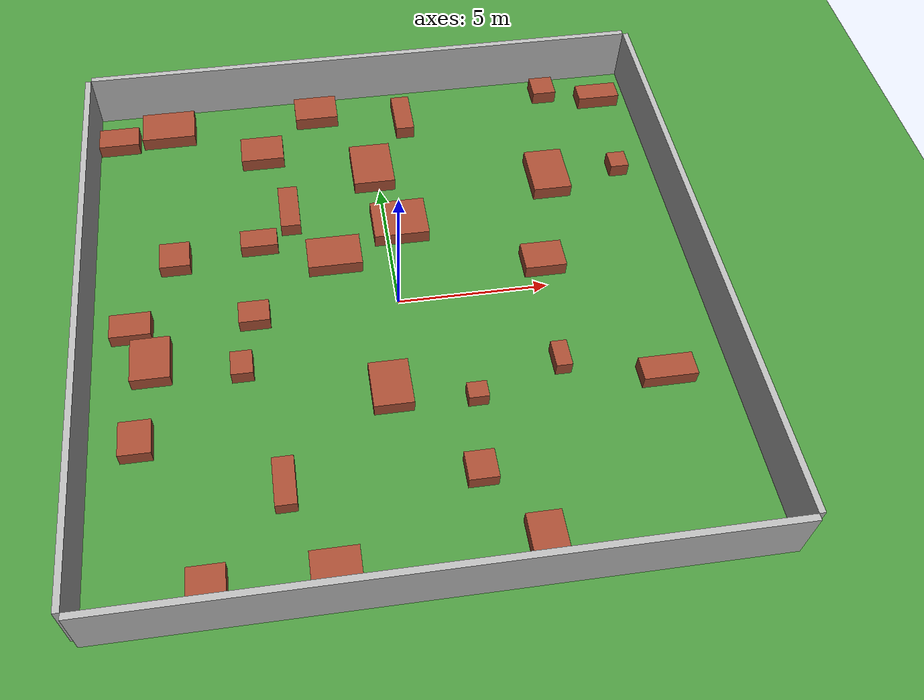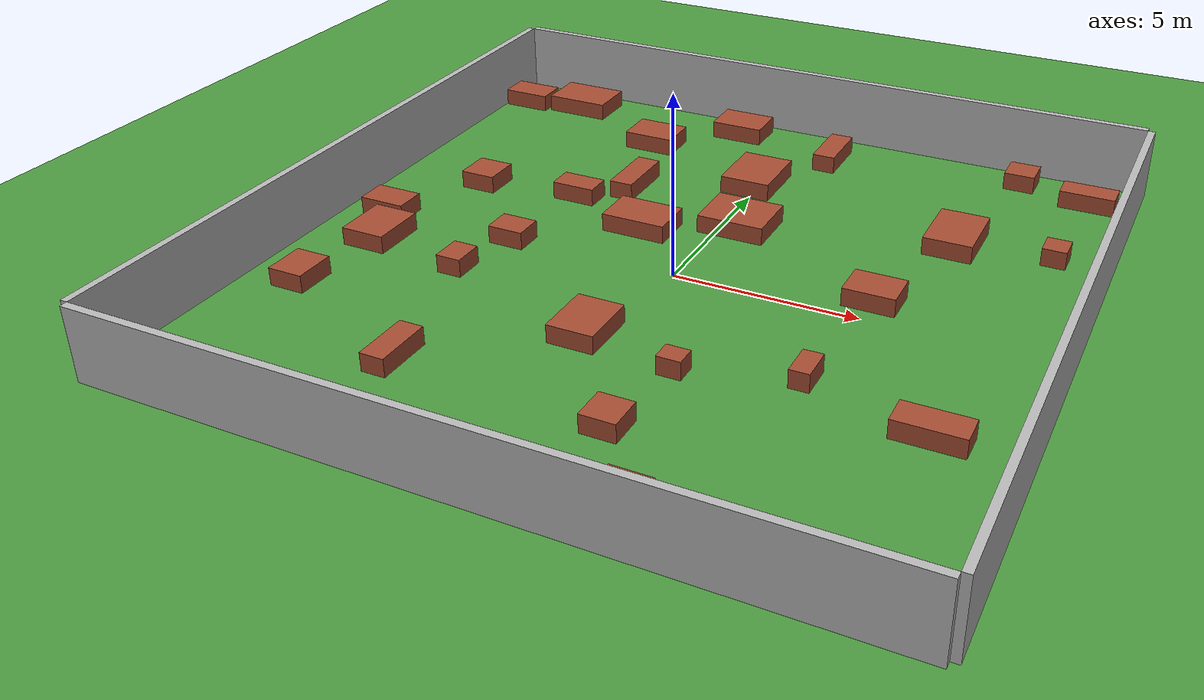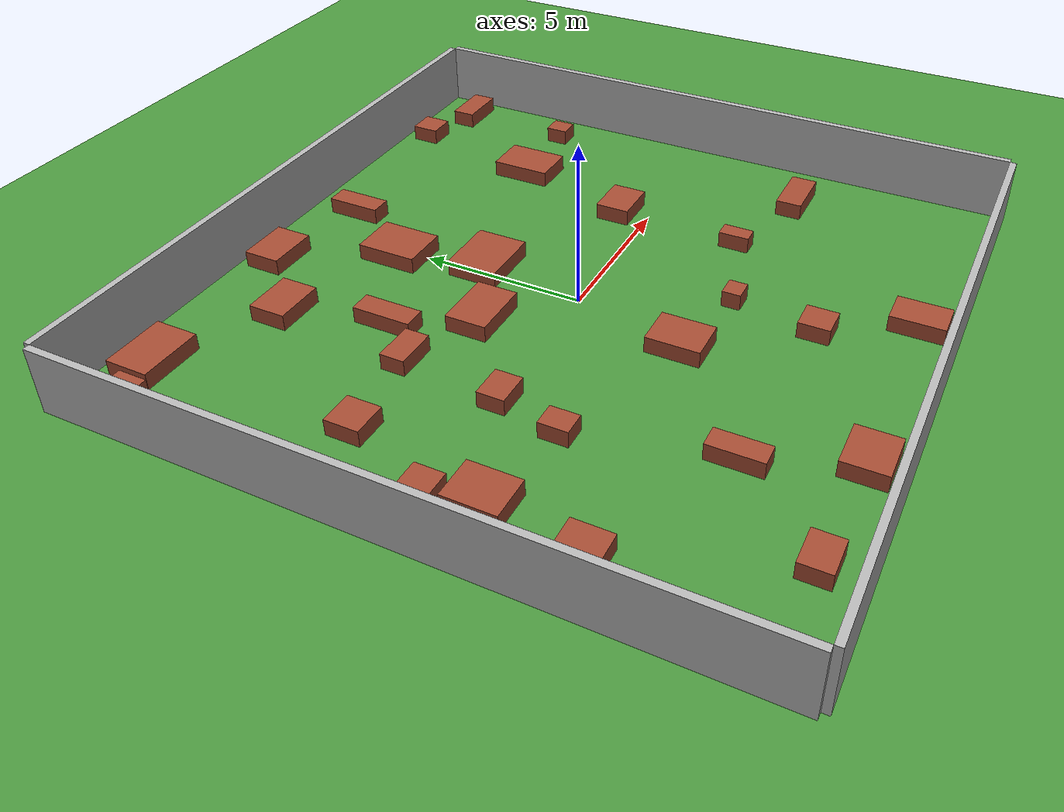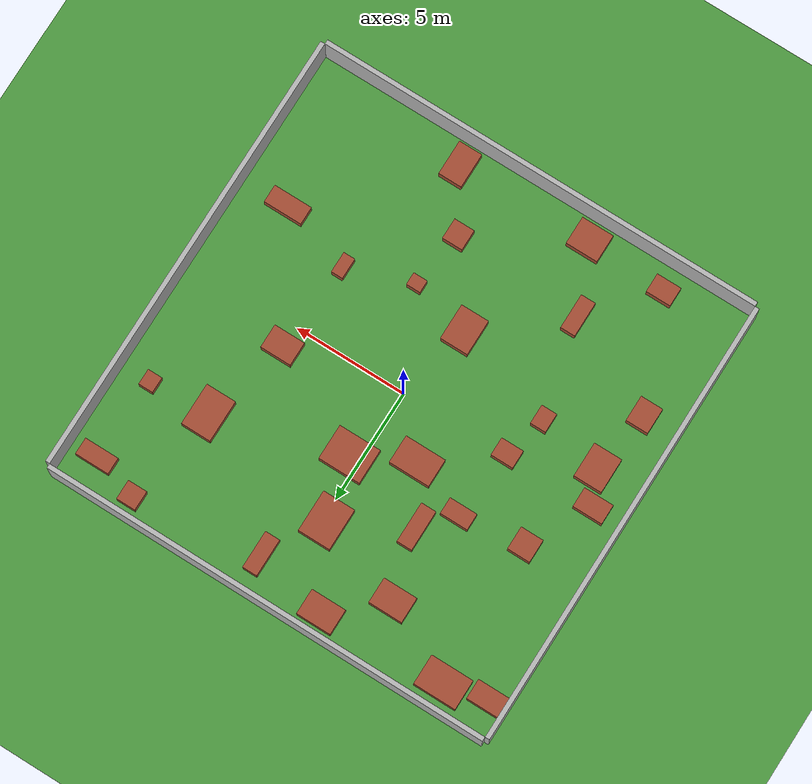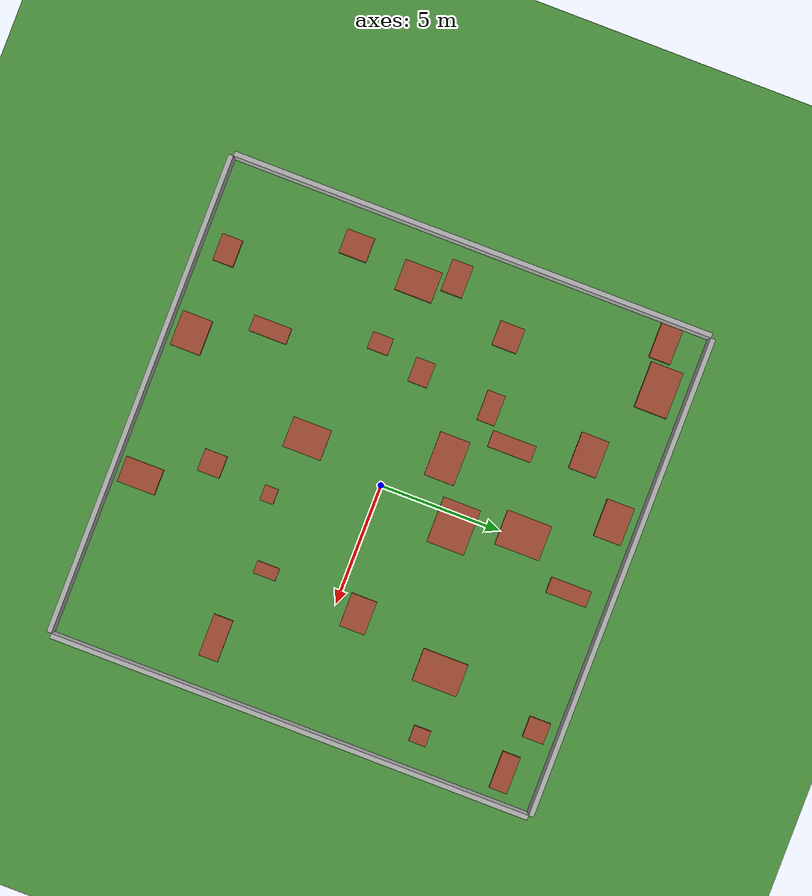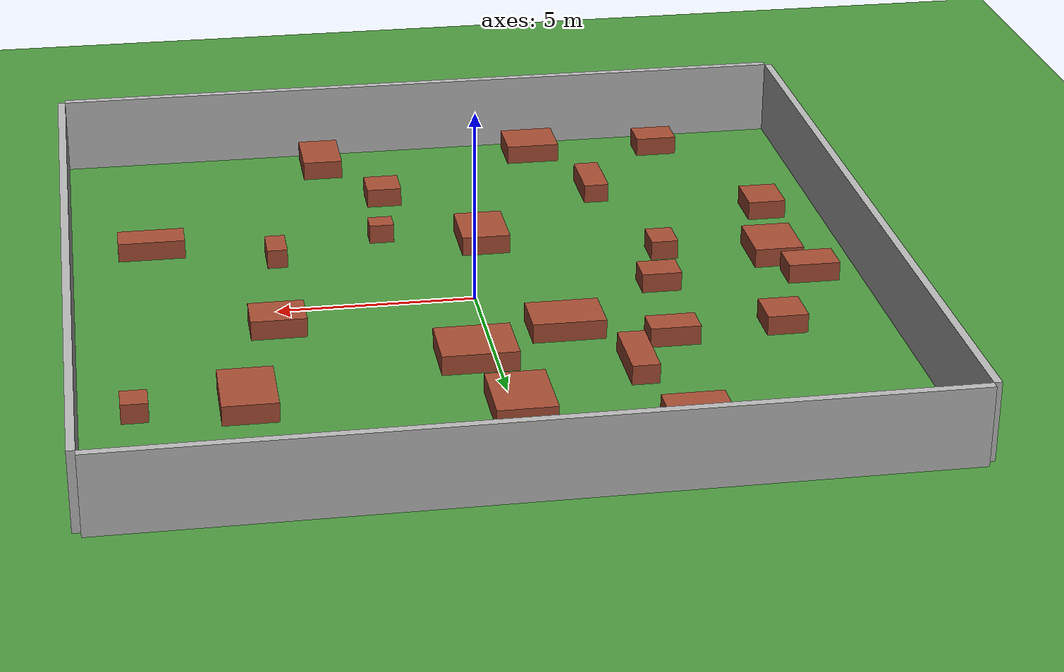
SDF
<?xml version='1.0' encoding='utf-8'?>
<sdf version="1.6"><world name="default"><physics type="ode"><real_time_update_rate>1000</real_time_update_rate><gravity>0 0 -9.81</gravity></physics><model name="ground_plane"><static>true</static><link name="ground_link"><collision name="collision"><geometry><plane><normal>0 0 1</normal><size>20 20</size></plane></geometry></collision><visual name="visual"><geometry><plane><normal>0 0 1</normal><size>20 20</size></plane></geometry><material><script><uri>file://media/materials/scripts/gazebo.material</uri><name>Gazebo/Grass</name></script></material></visual></link></model><model name="wall_north"><static>true</static><pose>0 10.1 1.0 0 0 0</pose><link name="link"><collision name="collision"><geometry><box><size>20 0.2 2.0</size></box></geometry></collision><visual name="visual"><geometry><box><size>20 0.2 2.0</size></box></geometry></visual></link></model><model name="wall_south"><static>true</static><pose>0 -10.1 1.0 0 0 0</pose><link name="link"><collision name="collision"><geometry><box><size>20 0.2 2.0</size></box></geometry></collision><visual name="visual"><geometry><box><size>20 0.2 2.0</size></box></geometry></visual></link></model><model name="wall_east"><static>true</static><pose>10.1 0 1.0 0 0 0</pose><link name="link"><collision name="collision"><geometry><box><size>0.2 20 2.0</size></box></geometry></collision><visual name="visual"><geometry><box><size>0.2 20 2.0</size></box></geometry></visual></link></model><model name="wall_west"><static>true</static><pose>-10.1 0 1.0 0 0 0</pose><link name="link"><collision name="collision"><geometry><box><size>0.2 20 2.0</size></box></geometry></collision><visual name="visual"><geometry><box><size>0.2 20 2.0</size></box></geometry></visual></link></model><include><uri>model://sun</uri></include><model name="box_0"><pose>-2.97 -9.16 0.25 0 0 0</pose><static>false</static><link name="link"><collision name="collision"><geometry><box><size>1.44 1.25 0.5</size></box></geometry></collision><visual name="visual"><geometry><box><size>1.44 1.25 0.5</size></box></geometry><material><script><uri>file://media/materials/scripts/gazebo.material</uri><name>Gazebo/Bricks</name></script></material></visual></link></model><model name="box_1"><pose>-4.06 7.24 0.25 0 0 0</pose><static>false</static><link name="link"><collision name="collision"><geometry><box><size>1.52 1.14 0.5</size></box></geometry></collision><visual name="visual"><geometry><box><size>1.52 1.14 0.5</size></box></geometry><material><script><uri>file://media/materials/scripts/gazebo.material</uri><name>Gazebo/Bricks</name></script></material></visual></link></model><model name="box_2"><pose>-5.24 -2.03 0.25 0 0 0</pose><static>false</static><link name="link"><collision name="collision"><geometry><box><size>0.7 0.86 0.5</size></box></geometry></collision><visual name="visual"><geometry><box><size>0.7 0.86 0.5</size></box></geometry><material><script><uri>file://media/materials/scripts/gazebo.material</uri><name>Gazebo/Bricks</name></script></material></visual></link></model><model name="box_3"><pose>0.47 3.25 0.25 0 0 0</pose><static>false</static><link name="link"><collision name="collision"><geometry><box><size>1.89 1.56 0.5</size></box></geometry></collision><visual name="visual"><geometry><box><size>1.89 1.56 0.5</size></box></geometry><material><script><uri>file://media/materials/scripts/gazebo.material</uri><name>Gazebo/Bricks</name></script></material></visual></link></model><model name="box_4"><pose>-0.17 5.95 0.25 0 0 0</pose><static>false</static><link name="link"><collision name="collision"><geometry><box><size>1.45 1.86 0.5</size></box></geometry></collision><visual name="visual"><geometry><box><size>1.45 1.86 0.5</size></box></geometry><material><script><uri>file://media/materials/scripts/gazebo.material</uri><name>Gazebo/Bricks</name></script></material></visual></link></model><model name="box_5"><pose>-6.53 -8.98 0.25 0 0 0</pose><static>false</static><link name="link"><collision name="collision"><geometry><box><size>1.11 0.85 0.5</size></box></geometry></collision><visual name="visual"><geometry><box><size>1.11 0.85 0.5</size></box></geometry><material><script><uri>file://media/materials/scripts/gazebo.material</uri><name>Gazebo/Bricks</name></script></material></visual></link></model><model name="box_6"><pose>3.02 -9.03 0.25 0 0 0</pose><static>false</static><link name="link"><collision name="collision"><geometry><box><size>1.06 1.57 0.5</size></box></geometry></collision><visual name="visual"><geometry><box><size>1.06 1.57 0.5</size></box></geometry><material><script><uri>file://media/materials/scripts/gazebo.material</uri><name>Gazebo/Bricks</name></script></material></visual></link></model><model name="box_7"><pose>-8.72 -0.11 0.25 0 0 0</pose><static>false</static><link name="link"><collision name="collision"><geometry><box><size>1.33 0.88 0.5</size></box></geometry></collision><visual name="visual"><geometry><box><size>1.33 0.88 0.5</size></box></geometry><material><script><uri>file://media/materials/scripts/gazebo.material</uri><name>Gazebo/Bricks</name></script></material></visual></link></model><model name="box_8"><pose>1.91 -4.01 0.25 0 0 0</pose><static>false</static><link name="link"><collision name="collision"><geometry><box><size>0.64 0.56 0.5</size></box></geometry></collision><visual name="visual"><geometry><box><size>0.64 0.56 0.5</size></box></geometry><material><script><uri>file://media/materials/scripts/gazebo.material</uri><name>Gazebo/Bricks</name></script></material></visual></link></model><model name="box_9"><pose>-4.42 2.97 0.25 0 0 0</pose><static>false</static><link name="link"><collision name="collision"><geometry><box><size>1.25 0.74 0.5</size></box></geometry></collision><visual name="visual"><geometry><box><size>1.25 0.74 0.5</size></box></geometry><material><script><uri>file://media/materials/scripts/gazebo.material</uri><name>Gazebo/Bricks</name></script></material></visual></link></model><model name="box_10"><pose>-1.93 2.06 0.25 0 0 0</pose><static>false</static><link name="link"><collision name="collision"><geometry><box><size>1.83 1.25 0.5</size></box></geometry></collision><visual name="visual"><geometry><box><size>1.83 1.25 0.5</size></box></geometry><material><script><uri>file://media/materials/scripts/gazebo.material</uri><name>Gazebo/Bricks</name></script></material></visual></link></model><model name="box_11"><pose>-3.29 4.28 0.25 0 0 0</pose><static>false</static><link name="link"><collision name="collision"><geometry><box><size>0.68 1.81 0.5</size></box></geometry></collision><visual name="visual"><geometry><box><size>0.68 1.81 0.5</size></box></geometry><material><script><uri>file://media/materials/scripts/gazebo.material</uri><name>Gazebo/Bricks</name></script></material></visual></link></model><model name="box_12"><pose>7.95 -3.96 0.25 0 0 0</pose><static>false</static><link name="link"><collision name="collision"><geometry><box><size>1.73 0.8 0.5</size></box></geometry></collision><visual name="visual"><geometry><box><size>1.73 0.8 0.5</size></box></geometry><material><script><uri>file://media/materials/scripts/gazebo.material</uri><name>Gazebo/Bricks</name></script></material></visual></link></model><model name="box_13"><pose>-4.75 -0.1 0.25 0 0 0</pose><static>false</static><link name="link"><collision name="collision"><geometry><box><size>1.01 0.81 0.5</size></box></geometry></collision><visual name="visual"><geometry><box><size>1.01 0.81 0.5</size></box></geometry><material><script><uri>file://media/materials/scripts/gazebo.material</uri><name>Gazebo/Bricks</name></script></material></visual></link></model><model name="box_14"><pose>6.84 9.19 0.25 0 0 0</pose><static>false</static><link name="link"><collision name="collision"><geometry><box><size>0.86 0.87 0.5</size></box></geometry></collision><visual name="visual"><geometry><box><size>0.86 0.87 0.5</size></box></geometry><material><script><uri>file://media/materials/scripts/gazebo.material</uri><name>Gazebo/Bricks</name></script></material></visual></link></model><model name="box_15"><pose>-0.7 -3.4 0.25 0 0 0</pose><static>false</static><link name="link"><collision name="collision"><geometry><box><size>1.26 1.6 0.5</size></box></geometry></collision><visual name="visual"><geometry><box><size>1.26 1.6 0.5</size></box></geometry><material><script><uri>file://media/materials/scripts/gazebo.material</uri><name>Gazebo/Bricks</name></script></material></visual></link></model><model name="box_16"><pose>6.07 4.81 0.25 0 0 0</pose><static>false</static><link name="link"><collision name="collision"><geometry><box><size>1.34 1.87 0.5</size></box></geometry></collision><visual name="visual"><geometry><box><size>1.34 1.87 0.5</size></box></geometry><material><script><uri>file://media/materials/scripts/gazebo.material</uri><name>Gazebo/Bricks</name></script></material></visual></link></model><model name="box_17"><pose>8.7 4.96 0.25 0 0 0</pose><static>false</static><link name="link"><collision name="collision"><geometry><box><size>0.65 0.7 0.5</size></box></geometry></collision><visual name="visual"><geometry><box><size>0.65 0.7 0.5</size></box></geometry><material><script><uri>file://media/materials/scripts/gazebo.material</uri><name>Gazebo/Bricks</name></script></material></visual></link></model><model name="box_18"><pose>-9.25 8.52 0.25 0 0 0</pose><static>false</static><link name="link"><collision name="collision"><geometry><box><size>1.43 0.89 0.5</size></box></geometry></collision><visual name="visual"><geometry><box><size>1.43 0.89 0.5</size></box></geometry><material><script><uri>file://media/materials/scripts/gazebo.material</uri><name>Gazebo/Bricks</name></script></material></visual></link></model><model name="box_19"><pose>-7.28 2.61 0.25 0 0 0</pose><static>false</static><link name="link"><collision name="collision"><geometry><box><size>1.02 1.03 0.5</size></box></geometry></collision><visual name="visual"><geometry><box><size>1.02 1.03 0.5</size></box></geometry><material><script><uri>file://media/materials/scripts/gazebo.material</uri><name>Gazebo/Bricks</name></script></material></visual></link></model><model name="box_20"><pose>-8.08 -1.5 0.25 0 0 0</pose><static>false</static><link name="link"><collision name="collision"><geometry><box><size>1.27 1.55 0.5</size></box></geometry></collision><visual name="visual"><geometry><box><size>1.27 1.55 0.5</size></box></geometry><material><script><uri>file://media/materials/scripts/gazebo.material</uri><name>Gazebo/Bricks</name></script></material></visual></link></model><model name="box_21"><pose>5.06 0.96 0.25 0 0 0</pose><static>false</static><link name="link"><collision name="collision"><geometry><box><size>1.39 1.06 0.5</size></box></geometry></collision><visual name="visual"><geometry><box><size>1.39 1.06 0.5</size></box></geometry><material><script><uri>file://media/materials/scripts/gazebo.material</uri><name>Gazebo/Bricks</name></script></material></visual></link></model><model name="box_22"><pose>8.85 8.61 0.25 0 0 0</pose><static>false</static><link name="link"><collision name="collision"><geometry><box><size>1.53 0.74 0.5</size></box></geometry></collision><visual name="visual"><geometry><box><size>1.53 0.74 0.5</size></box></geometry><material><script><uri>file://media/materials/scripts/gazebo.material</uri><name>Gazebo/Bricks</name></script></material></visual></link></model><model name="box_23"><pose>4.76 -3.04 0.25 0 0 0</pose><static>false</static><link name="link"><collision name="collision"><geometry><box><size>0.52 0.93 0.5</size></box></geometry></collision><visual name="visual"><geometry><box><size>0.52 0.93 0.5</size></box></geometry><material><script><uri>file://media/materials/scripts/gazebo.material</uri><name>Gazebo/Bricks</name></script></material></visual></link></model><model name="box_24"><pose>-4.2 -6.29 0.25 0 0 0</pose><static>false</static><link name="link"><collision name="collision"><geometry><box><size>0.66 1.57 0.5</size></box></geometry></collision><visual name="visual"><geometry><box><size>0.66 1.57 0.5</size></box></geometry><material><script><uri>file://media/materials/scripts/gazebo.material</uri><name>Gazebo/Bricks</name></script></material></visual></link></model><model name="box_25"><pose>1.56 -6.55 0.25 0 0 0</pose><static>false</static><link name="link"><collision name="collision"><geometry><box><size>0.92 0.93 0.5</size></box></geometry></collision><visual name="visual"><geometry><box><size>0.92 0.93 0.5</size></box></geometry><material><script><uri>file://media/materials/scripts/gazebo.material</uri><name>Gazebo/Bricks</name></script></material></visual></link></model><model name="box_26"><pose>1.29 8.43 0.25 0 0 0</pose><static>false</static><link name="link"><collision name="collision"><geometry><box><size>0.66 1.68 0.5</size></box></geometry></collision><visual name="visual"><geometry><box><size>0.66 1.68 0.5</size></box></geometry><material><script><uri>file://media/materials/scripts/gazebo.material</uri><name>Gazebo/Bricks</name></script></material></visual></link></model><model name="box_27"><pose>-1.93 9.12 0.25 0 0 0</pose><static>false</static><link name="link"><collision name="collision"><geometry><box><size>1.56 1.14 0.5</size></box></geometry></collision><visual name="visual"><geometry><box><size>1.56 1.14 0.5</size></box></geometry><material><script><uri>file://media/materials/scripts/gazebo.material</uri><name>Gazebo/Bricks</name></script></material></visual></link></model><model name="box_28"><pose>-8.52 -4.28 0.25 0 0 0</pose><static>false</static><link name="link"><collision name="collision"><geometry><box><size>1.0 1.15 0.5</size></box></geometry></collision><visual name="visual"><geometry><box><size>1.0 1.15 0.5</size></box></geometry><material><script><uri>file://media/materials/scripts/gazebo.material</uri><name>Gazebo/Bricks</name></script></material></visual></link></model><model name="box_29"><pose>-7.44 8.91 0.25 0 0 0</pose><static>false</static><link name="link"><collision name="collision"><geometry><box><size>1.91 1.34 0.5</size></box></geometry></collision><visual name="visual"><geometry><box><size>1.91 1.34 0.5</size></box></geometry><material><script><uri>file://media/materials/scripts/gazebo.material</uri><name>Gazebo/Bricks</name></script></material></visual></link></model></world></sdf>
